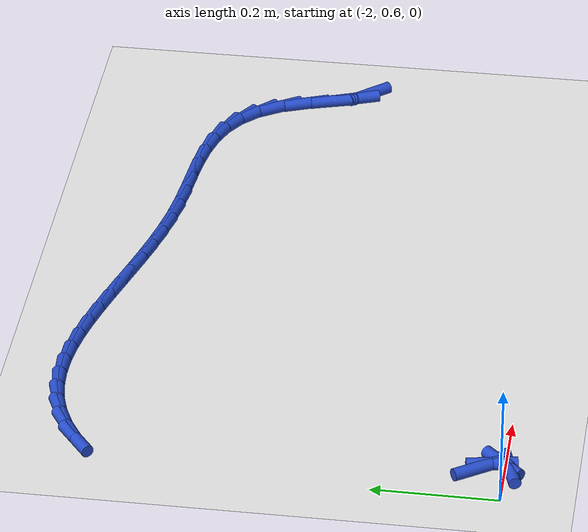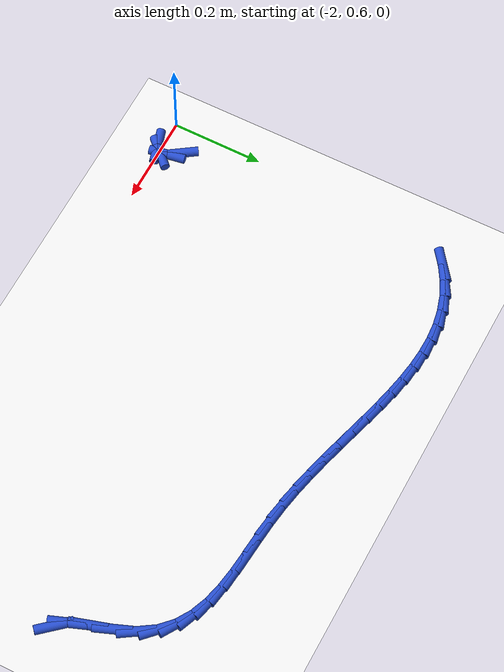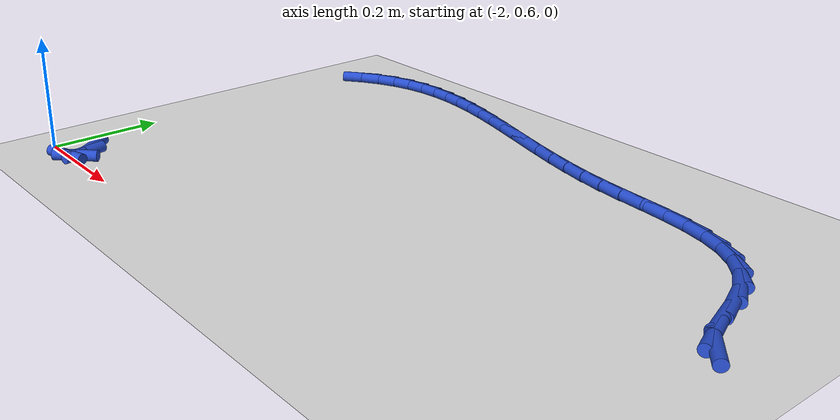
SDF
<sdf version="1.6">
 <world name="default">
  <model name="ground_plane">
   <static>1</static>
   <link name="link">
    <collision name="collision">
     <geometry><plane><normal>0 0 1</normal><size>100 100</size></plane></geometry>
     <surface><friction><ode><mu>100</mu><mu2>50</mu2></ode></friction></surface>
    </collision>
    <visual name="visual">
     <cast_shadows>0</cast_shadows>
     <geometry><plane><normal>0 0 1</normal><size>100 100</size></plane></geometry>
     <material>
      <script><uri>file://media/materials/scripts/gazebo.material</uri><name>Gazebo/WhiteGlow</name></script>
     </material>
    </visual>
   </link>
  </model>
  <model name="line">
   <link name="link_38">
    <pose>-0.8657614808621669 0.9416581189948933 0.01 0 1.57 -0.8511530641034339</pose>
    <collision name="collision">
     <geometry><cylinder><radius>0.01</radius><length>0.08</length></cylinder></geometry>
    </collision>
    <visual name="visual">
     <material>
      <script><name>Gazebo/Blue</name><uri>file://media/materials/scripts/gazebo.material</uri></script>
     </material>
     <geometry><cylinder><radius>0.01</radius><length>0.08</length></cylinder></geometry>
    </visual>
   </link>
   <link name="link_39">
    <pose>-0.8836693353677442 0.9620906837110765 0.01 0 1.57 -1.2094232574247654</pose>
    <collision name="collision">
     <geometry><cylinder><radius>0.01</radius><length>0.08</length></cylinder></geometry>
    </collision>
    <visual name="visual">
     <material>
      <script><name>Gazebo/Blue</name><uri>file://media/materials/scripts/gazebo.material</uri></script>
     </material>
     <geometry><cylinder><radius>0.01</radius><length>0.08</length></cylinder></geometry>
    </visual>
   </link>
   <link name="link_40">
    <pose>-0.8980097063884424 1.0000310570697595 0.01 0 1.57 -1.2710924141885263</pose>
    <collision name="collision">
     <geometry><cylinder><radius>0.01</radius><length>0.08</length></cylinder></geometry>
    </collision>
    <visual name="visual">
     <material>
      <script><name>Gazebo/Blue</name><uri>file://media/materials/scripts/gazebo.material</uri></script>
     </material>
     <geometry><cylinder><radius>0.01</radius><length>0.08</length></cylinder></geometry>
    </visual>
   </link>
   <link name="link_41">
    <pose>-0.9121252516673028 1.0457106801608802 0.01 0 1.57 -1.194994764128867</pose>
    <collision name="collision">
     <geometry><cylinder><radius>0.01</radius><length>0.08</length></cylinder></geometry>
    </collision>
    <visual name="visual">
     <material>
      <script><name>Gazebo/Blue</name><uri>file://media/materials/scripts/gazebo.material</uri></script>
     </material>
     <geometry><cylinder><radius>0.01</radius><length>0.08</length></cylinder></geometry>
    </visual>
   </link>
   <link name="link_42">
    <pose>-0.9293533391948237 1.0893755460519343 0.01 0 1.57 -0.9986970327232371</pose>
    <collision name="collision">
     <geometry><cylinder><radius>0.01</radius><length>0.08</length></cylinder></geometry>
    </collision>
    <visual name="visual">
     <material>
      <script><name>Gazebo/Blue</name><uri>file://media/materials/scripts/gazebo.material</uri></script>
     </material>
     <geometry><cylinder><radius>0.01</radius><length>0.08</length></cylinder></geometry>
    </visual>
   </link>
   <link name="link_43">
    <pose>-0.95189871455113 1.1243874638641287 0.01 0 1.57 -0.7697768503113064</pose>
    <collision name="collision">
     <geometry><cylinder><radius>0.01</radius><length>0.08</length></cylinder></geometry>
    </collision>
    <visual name="visual">
     <material>
      <script><name>Gazebo/Blue</name><uri>file://media/materials/scripts/gazebo.material</uri></script>
     </material>
     <geometry><cylinder><radius>0.01</radius><length>0.08</length></cylinder></geometry>
    </visual>
   </link>
   <link name="link_44">
    <pose>-0.9794335731874988 1.1510752250739722 0.01 0 1.57 -0.5524647746519411</pose>
    <collision name="collision">
     <geometry><cylinder><radius>0.01</radius><length>0.08</length></cylinder></geometry>
    </collision>
    <visual name="visual">
     <material>
      <script><name>Gazebo/Blue</name><uri>file://media/materials/scripts/gazebo.material</uri></script>
     </material>
     <geometry><cylinder><radius>0.01</radius><length>0.08</length></cylinder></geometry>
    </visual>
   </link>
   <link name="link_45">
    <pose>-1.011286582800095 1.1707126574599886 0.01 0 1.57 -0.3722471770734209</pose>
    <collision name="collision">
     <geometry><cylinder><radius>0.01</radius><length>0.08</length></cylinder></geometry>
    </collision>
    <visual name="visual">
     <material>
      <script><name>Gazebo/Blue</name><uri>file://media/materials/scripts/gazebo.material</uri></script>
     </material>
     <geometry><cylinder><radius>0.01</radius><length>0.08</length></cylinder></geometry>
    </visual>
   </link>
   <link name="link_46">
    <pose>-1.0467864110850822 1.184573588800702 0.01 0 1.57 -0.2385945440334282</pose>
    <collision name="collision">
     <geometry><cylinder><radius>0.01</radius><length>0.08</length></cylinder></geometry>
    </collision>
    <visual name="visual">
     <material>
      <script><name>Gazebo/Blue</name><uri>file://media/materials/scripts/gazebo.material</uri></script>
     </material>
     <geometry><cylinder><radius>0.01</radius><length>0.08</length></cylinder></geometry>
    </visual>
   </link>
   <link name="link_47">
    <pose>-1.0852617257386246 1.1939318468746365 0.01 0 1.57 -0.14918953065308801</pose>
    <collision name="collision">
     <geometry><cylinder><radius>0.01</radius><length>0.08</length></cylinder></geometry>
    </collision>
    <visual name="visual">
     <material>
      <script><name>Gazebo/Blue</name><uri>file://media/materials/scripts/gazebo.material</uri></script>
     </material>
     <geometry><cylinder><radius>0.01</radius><length>0.08</length></cylinder></geometry>
    </visual>
   </link>
   <link name="link_48">
    <pose>-1.1260411944568873 1.200061259460316 0.01 0 1.57 -0.09810819162039007</pose>
    <collision name="collision">
     <geometry><cylinder><radius>0.01</radius><length>0.08</length></cylinder></geometry>
    </collision>
    <visual name="visual">
     <material>
      <script><name>Gazebo/Blue</name><uri>file://media/materials/scripts/gazebo.material</uri></script>
     </material>
     <geometry><cylinder><radius>0.01</radius><length>0.08</length></cylinder></geometry>
    </visual>
   </link>
   <link name="link_49">
    <pose>-1.1684534849360333 1.2042356543362638 0.01 0 1.57 -0.08036379602253131</pose>
    <collision name="collision">
     <geometry><cylinder><radius>0.01</radius><length>0.08</length></cylinder></geometry>
    </collision>
    <visual name="visual">
     <material>
      <script><name>Gazebo/Blue</name><uri>file://media/materials/scripts/gazebo.material</uri></script>
     </material>
     <geometry><cylinder><radius>0.01</radius><length>0.08</length></cylinder></geometry>
    </visual>
   </link>
   <link name="link_50">
    <pose>-1.211827264872227 1.2077288592810043 0.01 0 1.57 -0.09330307324138314</pose>
    <collision name="collision">
     <geometry><cylinder><radius>0.01</radius><length>0.08</length></cylinder></geometry>
    </collision>
    <visual name="visual">
     <material>
      <script><name>Gazebo/Blue</name><uri>file://media/materials/scripts/gazebo.material</uri></script>
     </material>
     <geometry><cylinder><radius>0.01</radius><length>0.08</length></cylinder></geometry>
    </visual>
   </link>
   <link name="link_51">
    <pose>-1.255491201961633 1.2118147020730614 0.01 0 1.57 -0.1346932216754523</pose>
    <collision name="collision">
     <geometry><cylinder><radius>0.01</radius><length>0.08</length></cylinder></geometry>
    </collision>
    <visual name="visual">
     <material>
      <script><name>Gazebo/Blue</name><uri>file://media/materials/scripts/gazebo.material</uri></script>
     </material>
     <geometry><cylinder><radius>0.01</radius><length>0.08</length></cylinder></geometry>
    </visual>
   </link>
   <link name="link_52">
    <pose>-1.2988063591727415 1.2176845002956824 0.01 0 1.57 -0.1820857939323398</pose>
    <collision name="collision">
     <geometry><cylinder><radius>0.01</radius><length>0.08</length></cylinder></geometry>
    </collision>
    <visual name="visual">
     <material>
      <script><name>Gazebo/Blue</name><uri>file://media/materials/scripts/gazebo.material</uri></script>
     </material>
     <geometry><cylinder><radius>0.01</radius><length>0.08</length></cylinder></geometry>
    </visual>
   </link>
   <link name="link_53">
    <pose>-1.3415188162616565 1.2255489404693147 0.01 0 1.57 -0.2202382557159246</pose>
    <collision name="collision">
     <geometry><cylinder><radius>0.01</radius><length>0.08</length></cylinder></geometry>
    </collision>
    <visual name="visual">
     <material>
      <script><name>Gazebo/Blue</name><uri>file://media/materials/scripts/gazebo.material</uri></script>
     </material>
     <geometry><cylinder><radius>0.01</radius><length>0.08</length></cylinder></geometry>
    </visual>
   </link>
   <link name="link_54">
    <pose>-1.3836271092575863 1.2349757073768912 0.01 0 1.57 -0.24880306063134558</pose>
    <collision name="collision">
     <geometry><cylinder><radius>0.01</radius><length>0.08</length></cylinder></geometry>
    </collision>
    <visual name="visual">
     <material>
      <script><name>Gazebo/Blue</name><uri>file://media/materials/scripts/gazebo.material</uri></script>
     </material>
     <geometry><cylinder><radius>0.01</radius><length>0.08</length></cylinder></geometry>
    </visual>
   </link>
   <link name="link_55">
    <pose>-1.4251341679413911 1.245521294992301 0.01 0 1.57 -0.26770692192413775</pose>
    <collision name="collision">
     <geometry><cylinder><radius>0.01</radius><length>0.08</length></cylinder></geometry>
    </collision>
    <visual name="visual">
     <material>
      <script><name>Gazebo/Blue</name><uri>file://media/materials/scripts/gazebo.material</uri></script>
     </material>
     <geometry><cylinder><radius>0.01</radius><length>0.08</length></cylinder></geometry>
    </visual>
   </link>
   <link name="link_56">
    <pose>-1.4660429220939306 1.2567421972894324 0.01 0 1.57 -0.27679922250770833</pose>
    <collision name="collision">
     <geometry><cylinder><radius>0.01</radius><length>0.08</length></cylinder></geometry>
    </collision>
    <visual name="visual">
     <material>
      <script><name>Gazebo/Blue</name><uri>file://media/materials/scripts/gazebo.material</uri></script>
     </material>
     <geometry><cylinder><radius>0.01</radius><length>0.08</length></cylinder></geometry>
    </visual>
   </link>
   <link name="link_57">
    <pose>-1.506356301496063 1.2681949082421742 0.01 0 1.57 -0.2757881766289168</pose>
    <collision name="collision">
     <geometry><cylinder><radius>0.01</radius><length>0.08</length></cylinder></geometry>
    </collision>
    <visual name="visual">
     <material>
      <script><name>Gazebo/Blue</name><uri>file://media/materials/scripts/gazebo.material</uri></script>
     </material>
     <geometry><cylinder><radius>0.01</radius><length>0.08</length></cylinder></geometry>
    </visual>
   </link>
   <link name="link_58">
    <pose>-1.5460772359286474 1.2794359218244151 0.01 0 1.57 -0.2641959303812687</pose>
    <collision name="collision">
     <geometry><cylinder><radius>0.01</radius><length>0.08</length></cylinder></geometry>
    </collision>
    <visual name="visual">
     <material>
      <script><name>Gazebo/Blue</name><uri>file://media/materials/scripts/gazebo.material</uri></script>
     </material>
     <geometry><cylinder><radius>0.01</radius><length>0.08</length></cylinder></geometry>
    </visual>
   </link>
   <link name="link_59">
    <pose>-1.585208655172544 1.2900217320100436 0.01 0 1.57 -0.24133449417910988</pose>
    <collision name="collision">
     <geometry><cylinder><radius>0.01</radius><length>0.08</length></cylinder></geometry>
    </collision>
    <visual name="visual">
     <material>
      <script><name>Gazebo/Blue</name><uri>file://media/materials/scripts/gazebo.material</uri></script>
     </material>
     <geometry><cylinder><radius>0.01</radius><length>0.08</length></cylinder></geometry>
    </visual>
   </link>
   <link name="link_60">
    <pose>-1.6237534890086112 1.2995088327729485 0.01 0 1.57 -0.2063118415825362</pose>
    <collision name="collision">
     <geometry><cylinder><radius>0.01</radius><length>0.08</length></cylinder></geometry>
    </collision>
    <visual name="visual">
     <material>
      <script><name>Gazebo/Blue</name><uri>file://media/materials/scripts/gazebo.material</uri></script>
     </material>
     <geometry><cylinder><radius>0.01</radius><length>0.08</length></cylinder></geometry>
    </visual>
   </link>
   <link name="link_61">
    <pose>-1.6617146672177074 1.3074537180870176 0.01 0 1.57 -0.15808896118092197</pose>
    <collision name="collision">
     <geometry><cylinder><radius>0.01</radius><length>0.08</length></cylinder></geometry>
    </collision>
    <visual name="visual">
     <material>
      <script><name>Gazebo/Blue</name><uri>file://media/materials/scripts/gazebo.material</uri></script>
     </material>
     <geometry><cylinder><radius>0.01</radius><length>0.08</length></cylinder></geometry>
    </visual>
   </link>
   <link name="link_62">
    <pose>-1.6990951195806927 1.3134128819261404 0.01 0 1.57 -0.09562274098867192</pose>
    <collision name="collision">
     <geometry><cylinder><radius>0.01</radius><length>0.08</length></cylinder></geometry>
    </collision>
    <visual name="visual">
     <material>
      <script><name>Gazebo/Blue</name><uri>file://media/materials/scripts/gazebo.material</uri></script>
     </material>
     <geometry><cylinder><radius>0.01</radius><length>0.08</length></cylinder></geometry>
    </visual>
   </link>
   <link name="link_63">
    <pose>-1.7358977758784264 1.3169428182642056 0.01 0 1.57 -0.018138857817500083</pose>
    <collision name="collision">
     <geometry><cylinder><radius>0.01</radius><length>0.08</length></cylinder></geometry>
    </collision>
    <visual name="visual">
     <material>
      <script><name>Gazebo/Blue</name><uri>file://media/materials/scripts/gazebo.material</uri></script>
     </material>
     <geometry><cylinder><radius>0.01</radius><length>0.08</length></cylinder></geometry>
    </visual>
   </link>
   <link name="link_64">
    <pose>-1.7721255658917667 1.3176000210751013 0.01 0 1.57 0.07443725250544697</pose>
    <collision name="collision">
     <geometry><cylinder><radius>0.01</radius><length>0.08</length></cylinder></geometry>
    </collision>
    <visual name="visual">
     <material>
      <script><name>Gazebo/Blue</name><uri>file://media/materials/scripts/gazebo.material</uri></script>
     </material>
     <geometry><cylinder><radius>0.01</radius><length>0.08</length></cylinder></geometry>
    </visual>
   </link>
   <link name="link_65">
    <pose>-1.8077814194015736 1.314940984332716 0.01 0 1.57 0.18093905527176934</pose>
    <collision name="collision">
     <geometry><cylinder><radius>0.01</radius><length>0.08</length></cylinder></geometry>
    </collision>
    <visual name="visual">
     <material>
      <script><name>Gazebo/Blue</name><uri>file://media/materials/scripts/gazebo.material</uri></script>
     </material>
     <geometry><cylinder><radius>0.01</radius><length>0.08</length></cylinder></geometry>
    </visual>
   </link>
   <link name="link_66">
    <pose>-1.8428682661887064 1.308522202010939 0.01 0 1.57 0.298505774573779</pose>
    <collision name="collision">
     <geometry><cylinder><radius>0.01</radius><length>0.08</length></cylinder></geometry>
    </collision>
    <visual name="visual">
     <material>
      <script><name>Gazebo/Blue</name><uri>file://media/materials/scripts/gazebo.material</uri></script>
     </material>
     <geometry><cylinder><radius>0.01</radius><length>0.08</length></cylinder></geometry>
    </visual>
   </link>
   <link name="link_67">
    <pose>-1.8773890360340229 1.2979001680836582 0.01 0 1.57 0.42255659736771134</pose>
    <collision name="collision">
     <geometry><cylinder><radius>0.01</radius><length>0.08</length></cylinder></geometry>
    </collision>
    <visual name="visual">
     <material>
      <script><name>Gazebo/Blue</name><uri>file://media/materials/scripts/gazebo.material</uri></script>
     </material>
     <geometry><cylinder><radius>0.01</radius><length>0.08</length></cylinder></geometry>
    </visual>
   </link>
   <link name="link_68">
    <pose>-1.911346657957439 1.2826313777290375 0.01 0 1.57 0.5451701905245984</pose>
    <collision name="collision">
     <geometry><cylinder><radius>0.01</radius><length>0.08</length></cylinder></geometry>
    </collision>
    <visual name="visual">
     <material>
      <script><name>Gazebo/Blue</name><uri>file://media/materials/scripts/gazebo.material</uri></script>
     </material>
     <geometry><cylinder><radius>0.01</radius><length>0.08</length></cylinder></geometry>
    </visual>
   </link>
   <link name="link_69">
    <pose>-1.9446372994509264 1.2624412875653537 0.01 0 1.57 0.6565397373517307</pose>
    <collision name="collision">
     <geometry><cylinder><radius>0.01</radius><length>0.08</length></cylinder></geometry>
    </collision>
    <visual name="visual">
     <material>
      <script><name>Gazebo/Blue</name><uri>file://media/materials/scripts/gazebo.material</uri></script>
     </material>
     <geometry><cylinder><radius>0.01</radius><length>0.08</length></cylinder></geometry>
    </visual>
   </link>
   <link name="link_86">
    <pose>-1.9355666397155762 0.6426788160131706 0.01 0 1.57 -0.973264243758359</pose>
    <collision name="collision">
     <geometry><cylinder><radius>0.01</radius><length>0.08</length></cylinder></geometry>
    </collision>
    <visual name="visual">
     <material>
      <script><name>Gazebo/Blue</name><uri>file://media/materials/scripts/gazebo.material</uri></script>
     </material>
     <geometry><cylinder><radius>0.01</radius><length>0.08</length></cylinder></geometry>
    </visual>
   </link>
   <link name="link_87">
    <pose>-1.920511007277932 0.620555094932783 0.01 0 1.57 -1.4040120548253978</pose>
    <collision name="collision">
     <geometry><cylinder><radius>0.01</radius><length>0.08</length></cylinder></geometry>
    </collision>
    <visual name="visual">
     <material>
      <script><name>Gazebo/Blue</name><uri>file://media/materials/scripts/gazebo.material</uri></script>
     </material>
     <geometry><cylinder><radius>0.01</radius><length>0.08</length></cylinder></geometry>
    </visual>
   </link>
   <link name="link_88">
    <pose>-1.9176769089594785 0.6037203495169039 0.01 0 1.57 0.7963314833209875</pose>
    <collision name="collision">
     <geometry><cylinder><radius>0.01</radius><length>0.08</length></cylinder></geometry>
    </collision>
    <visual name="visual">
     <material>
      <script><name>Gazebo/Blue</name><uri>file://media/materials/scripts/gazebo.material</uri></script>
     </material>
     <geometry><cylinder><radius>0.01</radius><length>0.08</length></cylinder></geometry>
    </visual>
   </link>
   <link name="link_89">
    <pose>-1.9288705498859946 0.5922792256037586 0.01 0 1.57 0.29650184930600826</pose>
    <collision name="collision">
     <geometry><cylinder><radius>0.01</radius><length>0.08</length></cylinder></geometry>
    </collision>
    <visual name="visual">
     <material>
      <script><name>Gazebo/Blue</name><uri>file://media/materials/scripts/gazebo.material</uri></script>
     </material>
     <geometry><cylinder><radius>0.01</radius><length>0.08</length></cylinder></geometry>
    </visual>
   </link>
  </model>
 </world>
</sdf>
